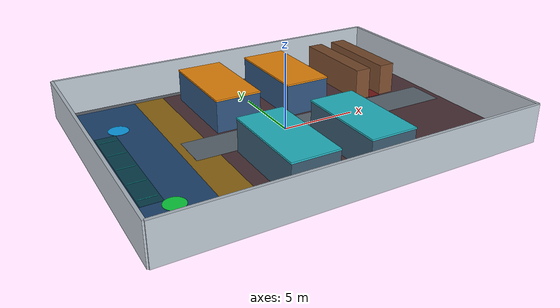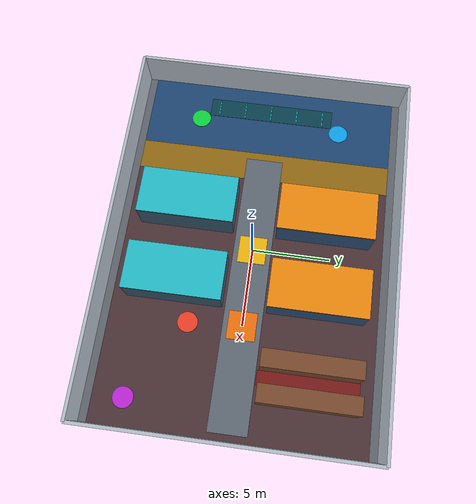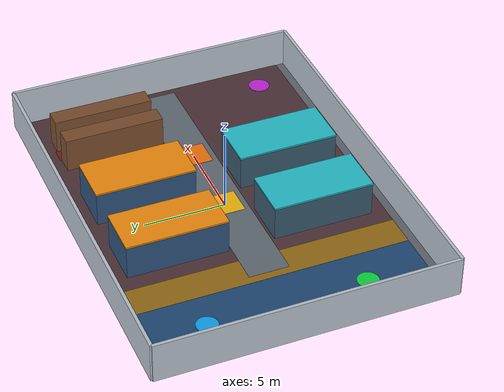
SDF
<?xml version="1.0"?>
<sdf version="1.9">
  <world name="warehouse_sih_demo">
    <physics name="fast_stable" type="ode">
      <max_step_size>0.002</max_step_size>
      <real_time_factor>1.0</real_time_factor>
      <real_time_update_rate>500</real_time_update_rate>
    </physics>

    <plugin filename="gz-sim-physics-system" name="gz::sim::systems::Physics"/>
    <plugin filename="gz-sim-user-commands-system" name="gz::sim::systems::UserCommands"/>
    <plugin filename="gz-sim-scene-broadcaster-system" name="gz::sim::systems::SceneBroadcaster"/>
    <plugin filename="gz-sim-sensors-system" name="gz::sim::systems::Sensors">
      <render_engine>ogre2</render_engine>
    </plugin>
    <plugin filename="gz-sim-imu-system" name="gz::sim::systems::Imu"/>

    <scene>
      <ambient>0.55 0.58 0.62 1</ambient>
      <background>0.12 0.15 0.20 1</background>
      <shadows>true</shadows>
    </scene>
    <light name="sun" type="directional">
      <pose>0 0 14 0 0 0</pose>
      <diffuse>0.95 0.95 0.92 1</diffuse>
      <specular>0.25 0.25 0.25 1</specular>
      <direction>-0.35 0.25 -0.9</direction>
      <cast_shadows>true</cast_shadows>
    </light>
    <light name="interior_fill" type="point">
      <pose>2 0 7 0 0 0</pose><diffuse>0.8 0.85 1 1</diffuse>
      <attenuation><range>30</range><constant>0.4</constant><linear>0.02</linear><quadratic>0.001</quadratic></attenuation>
    </light>

    <!-- 24 m x 18 m floor and collision walls. -->
    <model name="warehouse_floor"><static>true</static><link name="floor">
      <collision name="collision"><geometry><box><size>24 18 0.10</size></box></geometry></collision>
      <visual name="visual"><geometry><box><size>24 18 0.10</size></box></geometry>
        <material><ambient>0.30 0.32 0.35 1</ambient><diffuse>0.38 0.40 0.43 1</diffuse></material></visual>
    </link></model>
    <model name="wall_north"><static>true</static><pose>0 9 1.25 0 0 0</pose><link name="wall">
      <collision name="collision"><geometry><box><size>24 0.20 2.5</size></box></geometry></collision>
      <visual name="visual"><geometry><box><size>24 0.20 2.5</size></box></geometry><material><ambient>0.72 0.76 0.80 1</ambient><diffuse>0.72 0.76 0.80 1</diffuse></material></visual>
    </link></model>
    <model name="wall_south"><static>true</static><pose>0 -9 1.25 0 0 0</pose><link name="wall">
      <collision name="collision"><geometry><box><size>24 0.20 2.5</size></box></geometry></collision>
      <visual name="visual"><geometry><box><size>24 0.20 2.5</size></box></geometry><material><ambient>0.72 0.76 0.80 1</ambient><diffuse>0.72 0.76 0.80 1</diffuse></material></visual>
    </link></model>
    <model name="wall_east"><static>true</static><pose>12 0 1.25 0 0 0</pose><link name="wall">
      <collision name="collision"><geometry><box><size>0.20 18 2.5</size></box></geometry></collision>
      <visual name="visual"><geometry><box><size>0.20 18 2.5</size></box></geometry><material><ambient>0.72 0.76 0.80 1</ambient><diffuse>0.72 0.76 0.80 1</diffuse></material></visual>
    </link></model>
    <model name="wall_west"><static>true</static><pose>-12 0 1.25 0 0 0</pose><link name="wall">
      <collision name="collision"><geometry><box><size>0.20 18 2.5</size></box></geometry></collision>
      <visual name="visual"><geometry><box><size>0.20 18 2.5</size></box></geometry><material><ambient>0.72 0.76 0.80 1</ambient><diffuse>0.72 0.76 0.80 1</diffuse></material></visual>
    </link></model>

    <!-- Non-colliding floor overlays make the demo zones readable from above. -->
    <model name="zone_loading_bay"><static>true</static><pose>-9.2 0 0.061 0 0 0</pose><link name="mark"><visual name="visual">
      <geometry><box><size>5.4 16.8 0.012</size></box></geometry><material><ambient>0.12 0.28 0.46 1</ambient><diffuse>0.12 0.28 0.46 1</diffuse></material>
    </visual></link></model>
    <model name="zone_gnss_transition"><static>true</static><pose>-6.0 0 0.063 0 0 0</pose><link name="mark"><visual name="visual">
      <geometry><box><size>2.0 16.8 0.014</size></box></geometry><material><ambient>0.58 0.42 0.08 1</ambient><diffuse>0.58 0.42 0.08 1</diffuse></material>
    </visual></link></model>
    <model name="zone_gnss_denied"><static>true</static><pose>3.5 0 0.061 0 0 0</pose><link name="mark"><visual name="visual">
      <geometry><box><size>17.0 16.8 0.012</size></box></geometry><material><ambient>0.30 0.20 0.22 1</ambient><diffuse>0.30 0.20 0.22 1</diffuse></material>
    </visual></link></model>
    <model name="main_corridor_marking"><static>true</static><pose>2.5 0 0.070 0 0 0</pose><link name="mark"><visual name="visual">
      <geometry><box><size>18.0 2.45 0.016</size></box></geometry><material><ambient>0.38 0.42 0.46 1</ambient><diffuse>0.38 0.42 0.46 1</diffuse></material>
    </visual></link></model>
    <model name="intersection_A_marking"><static>true</static><pose>0 0 0.081 0 0 0</pose><link name="mark"><visual name="visual">
      <geometry><box><size>1.8 1.8 0.018</size></box></geometry><material><ambient>0.95 0.72 0.05 1</ambient><diffuse>0.95 0.72 0.05 1</diffuse></material>
    </visual></link></model>
    <model name="intersection_B_marking"><static>true</static><pose>5.0 0 0.081 0 0 0</pose><link name="mark"><visual name="visual">
      <geometry><box><size>1.8 1.8 0.018</size></box></geometry><material><ambient>0.95 0.45 0.05 1</ambient><diffuse>0.95 0.45 0.05 1</diffuse></material>
    </visual></link></model>
    <model name="narrow_aisle_marking"><static>true</static><pose>8.0 4.45 0.081 0 0 0</pose><link name="mark"><visual name="visual">
      <geometry><box><size>0.90 6.30 0.018</size></box></geometry><material><ambient>0.48 0.10 0.10 1</ambient><diffuse>0.48 0.10 0.10 1</diffuse></material>
    </visual></link></model>

    <!-- Six lightweight storage blocks form two rack groups and one choke point. -->
    <model name="rack_A1"><static>true</static><pose>-2.5 4.45 1.10 0 0 0</pose><link name="rack">
      <collision name="collision"><geometry><box><size>3.0 6.1 2.2</size></box></geometry></collision>
      <visual name="frame"><geometry><box><size>3.0 6.1 2.2</size></box></geometry><material><ambient>0.18 0.28 0.38 1</ambient><diffuse>0.18 0.32 0.48 1</diffuse></material></visual>
      <visual name="stripe"><pose>0 0 1.12 0 0 0</pose><geometry><box><size>3.04 6.14 0.10</size></box></geometry><material><ambient>0.95 0.55 0.05 1</ambient><diffuse>0.95 0.55 0.05 1</diffuse></material></visual>
    </link></model>
    <model name="rack_A2"><static>true</static><pose>2.5 4.45 1.10 0 0 0</pose><link name="rack">
      <collision name="collision"><geometry><box><size>3.0 6.1 2.2</size></box></geometry></collision>
      <visual name="frame"><geometry><box><size>3.0 6.1 2.2</size></box></geometry><material><ambient>0.18 0.28 0.38 1</ambient><diffuse>0.18 0.32 0.48 1</diffuse></material></visual>
      <visual name="stripe"><pose>0 0 1.12 0 0 0</pose><geometry><box><size>3.04 6.14 0.10</size></box></geometry><material><ambient>0.95 0.55 0.05 1</ambient><diffuse>0.95 0.55 0.05 1</diffuse></material></visual>
    </link></model>
    <model name="rack_B1"><static>true</static><pose>-2.5 -4.45 1.10 0 0 0</pose><link name="rack">
      <collision name="collision"><geometry><box><size>3.0 6.1 2.2</size></box></geometry></collision>
      <visual name="frame"><geometry><box><size>3.0 6.1 2.2</size></box></geometry><material><ambient>0.22 0.30 0.34 1</ambient><diffuse>0.22 0.34 0.42 1</diffuse></material></visual>
      <visual name="stripe"><pose>0 0 1.12 0 0 0</pose><geometry><box><size>3.04 6.14 0.10</size></box></geometry><material><ambient>0.15 0.75 0.80 1</ambient><diffuse>0.15 0.75 0.80 1</diffuse></material></visual>
    </link></model>
    <model name="rack_B2"><static>true</static><pose>2.5 -4.45 1.10 0 0 0</pose><link name="rack">
      <collision name="collision"><geometry><box><size>3.0 6.1 2.2</size></box></geometry></collision>
      <visual name="frame"><geometry><box><size>3.0 6.1 2.2</size></box></geometry><material><ambient>0.22 0.30 0.34 1</ambient><diffuse>0.22 0.34 0.42 1</diffuse></material></visual>
      <visual name="stripe"><pose>0 0 1.12 0 0 0</pose><geometry><box><size>3.04 6.14 0.10</size></box></geometry><material><ambient>0.15 0.75 0.80 1</ambient><diffuse>0.15 0.75 0.80 1</diffuse></material></visual>
    </link></model>
    <model name="rack_choke_left"><static>true</static><pose>7.0 4.45 1.10 0 0 0</pose><link name="rack">
      <collision name="collision"><geometry><box><size>1.10 6.1 2.2</size></box></geometry></collision>
      <visual name="frame"><geometry><box><size>1.10 6.1 2.2</size></box></geometry><material><ambient>0.32 0.22 0.18 1</ambient><diffuse>0.48 0.30 0.18 1</diffuse></material></visual>
    </link></model>
    <model name="rack_choke_right"><static>true</static><pose>9.0 4.45 1.10 0 0 0</pose><link name="rack">
      <collision name="collision"><geometry><box><size>1.10 6.1 2.2</size></box></geometry></collision>
      <visual name="frame"><geometry><box><size>1.10 6.1 2.2</size></box></geometry><material><ambient>0.32 0.22 0.18 1</ambient><diffuse>0.48 0.30 0.18 1</diffuse></material></visual>
    </link></model>

    <!-- One continuous five-slot industrial charging station; all geometry is drivable. -->
    <model name="charging_station"><static>true</static><pose>-10.2 0 0.074 0 0 0</pose><link name="platform">
      <visual name="visual"><geometry><box><size>1.30 8.50 0.018</size></box></geometry><material><ambient>0.025 0.12 0.16 1</ambient><diffuse>0.04 0.26 0.32 1</diffuse></material></visual>
    </link></model>
    <model name="charging_slot_markers"><static>true</static><pose>-10.2 0 0.082 0 0 0</pose><link name="markers">
      <visual name="slot_1"><pose>0 -3.6 0 0 0 0</pose><geometry><box><size>1.08 0.05 0.010</size></box></geometry><material><ambient>0.10 0.95 0.90 1</ambient><diffuse>0.10 0.95 0.90 1</diffuse></material></visual>
      <visual name="slot_2"><pose>0 -1.8 0 0 0 0</pose><geometry><box><size>1.08 0.05 0.010</size></box></geometry><material><ambient>0.10 0.95 0.90 1</ambient><diffuse>0.10 0.95 0.90 1</diffuse></material></visual>
      <visual name="slot_3"><pose>0 0 0 0 0 0</pose><geometry><box><size>1.08 0.05 0.010</size></box></geometry><material><ambient>0.10 0.95 0.90 1</ambient><diffuse>0.10 0.95 0.90 1</diffuse></material></visual>
      <visual name="slot_4"><pose>0 1.8 0 0 0 0</pose><geometry><box><size>1.08 0.05 0.010</size></box></geometry><material><ambient>0.10 0.95 0.90 1</ambient><diffuse>0.10 0.95 0.90 1</diffuse></material></visual>
      <visual name="slot_5"><pose>0 3.6 0 0 0 0</pose><geometry><box><size>1.08 0.05 0.010</size></box></geometry><material><ambient>0.10 0.95 0.90 1</ambient><diffuse>0.10 0.95 0.90 1</diffuse></material></visual>
    </link></model>
    <model name="pickup_A_pad"><static>true</static><pose>-9.2 -4.8 0.075 0 0 0</pose><link name="pad"><visual name="visual"><geometry><cylinder><radius>0.65</radius><length>0.02</length></cylinder></geometry><material><ambient>0.05 0.85 0.25 1</ambient><diffuse>0.05 0.85 0.25 1</diffuse></material></visual></link></model>
    <model name="pickup_B_pad"><static>true</static><pose>-9.2 4.8 0.075 0 0 0</pose><link name="pad"><visual name="visual"><geometry><cylinder><radius>0.65</radius><length>0.02</length></cylinder></geometry><material><ambient>0.05 0.65 0.95 1</ambient><diffuse>0.05 0.65 0.95 1</diffuse></material></visual></link></model>
    <model name="drop_A_pad"><static>true</static><pose>5.2 -3.4 0.075 0 0 0</pose><link name="pad"><visual name="visual"><geometry><cylinder><radius>0.65</radius><length>0.02</length></cylinder></geometry><material><ambient>0.95 0.25 0.15 1</ambient><diffuse>0.95 0.25 0.15 1</diffuse></material></visual></link></model>
    <model name="drop_B_pad"><static>true</static><pose>10.2 -6.5 0.075 0 0 0</pose><link name="pad"><visual name="visual"><geometry><cylinder><radius>0.65</radius><length>0.02</length></cylinder></geometry><material><ambient>0.75 0.15 0.85 1</ambient><diffuse>0.75 0.15 0.85 1</diffuse></material></visual></link></model>
  </world>
</sdf>
